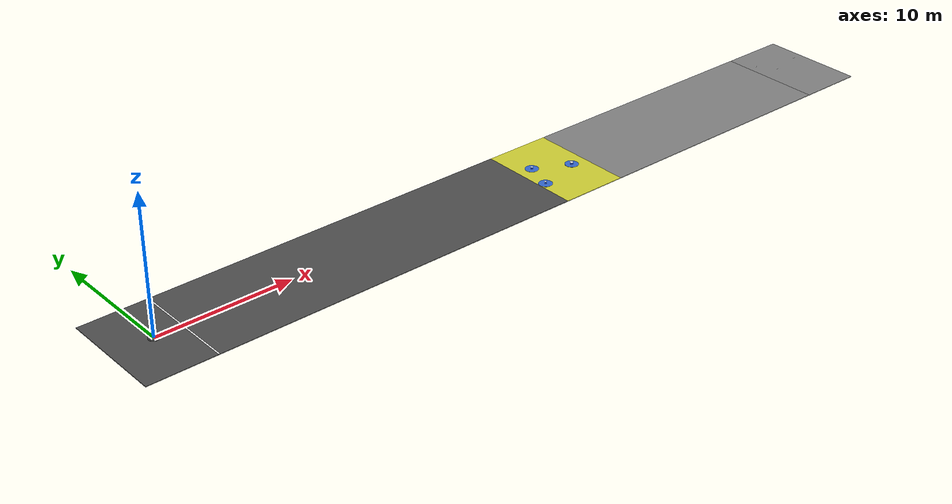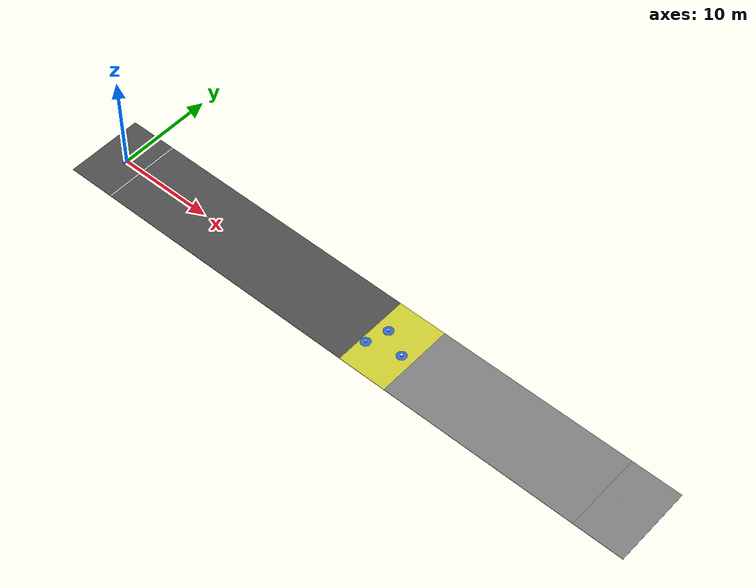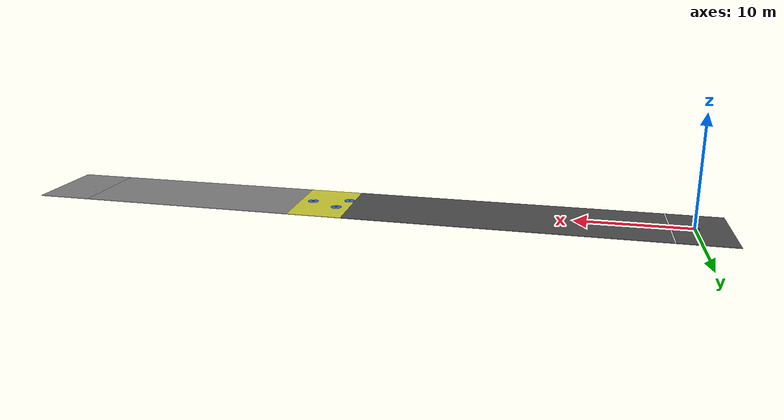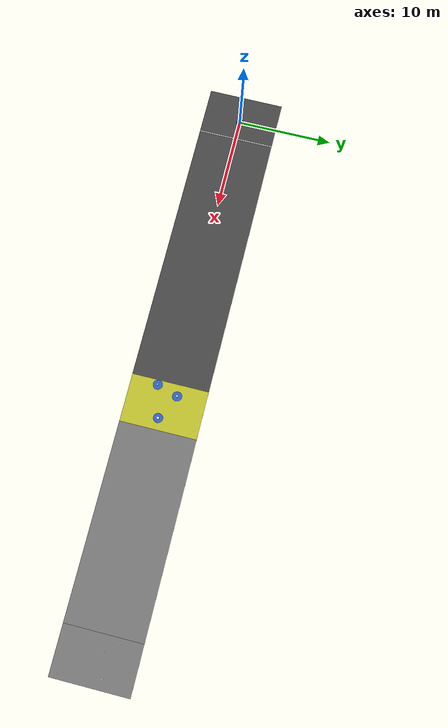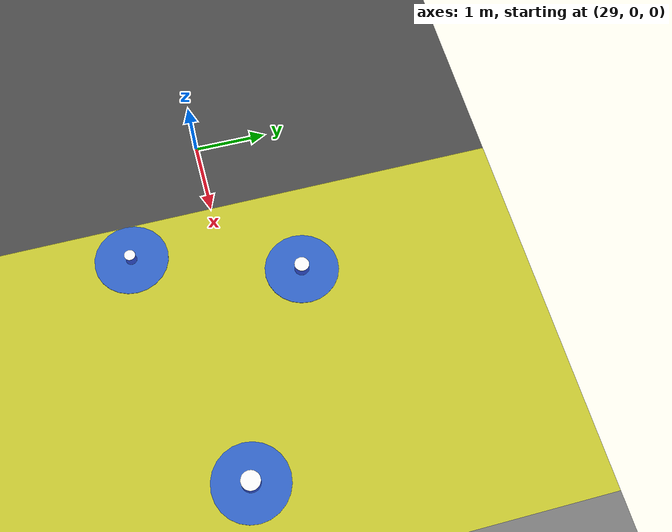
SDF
<sdf version="1.9">
 <world name="competition_task_random">
  <physics name="1ms" type="ignore">
   <max_step_size>0.001</max_step_size>
   <real_time_factor>1.0</real_time_factor>
  </physics>
  <plugin filename="gz-sim-physics-system" name="gz::sim::systems::Physics"/>
  <plugin filename="gz-sim-sensors-system" name="gz::sim::systems::Sensors">
   <render_engine>ogre2</render_engine>
  </plugin>
  <plugin filename="gz-sim-user-commands-system" name="gz::sim::systems::UserCommands"/>
  <plugin filename="gz-sim-scene-broadcaster-system" name="gz::sim::systems::SceneBroadcaster"/>
  <plugin filename="gz-sim-imu-system" name="gz::sim::systems::Imu"/>
  <plugin filename="gz-sim-navsat-system" name="gz::sim::systems::NavSat"/>
  <scene><ambient>1.0 1.0 1.0</ambient><background>0.8 0.8 0.8</background></scene>
  <spherical_coordinates>
   <latitude_deg>-35.363262</latitude_deg>
   <longitude_deg>149.165237</longitude_deg>
   <elevation>584</elevation>
   <heading_deg>0</heading_deg>
   <surface_model>EARTH_WGS84</surface_model>
  </spherical_coordinates>
  <light type="directional" name="sun">
   <pose>0 0 10 0 0 0</pose>
   <diffuse>0.8 0.8 0.8 1</diffuse>
   <specular>0.8 0.8 0.8 1</specular>
   <attenuation>
    <range>1000</range>
    <constant>0.9</constant>
    <linear>0.01</linear>
    <quadratic>0.001</quadratic>
   </attenuation>
   <direction>-0.5 0.1 -0.9</direction>
  </light>
  <model name="axes">
   <static>1</static>
   <link name="link">
    <visual name="r">
     <cast_shadows>0</cast_shadows>
     <pose>5 0 0.1 0 0 0</pose>
     <geometry><box><size>10 0.01 0.01</size></box></geometry>
     <material>
      <ambient>1 0 0 0.8</ambient>
      <diffuse>1 0 0 0.8</diffuse>
      <emissive>1 0 0 0.8</emissive>
      <specular>0.5 0.5 0.5 0.8</specular>
     </material>
    </visual>
    <visual name="g">
     <cast_shadows>0</cast_shadows>
     <pose>0 5 0.1 0 0 0</pose>
     <geometry><box><size>0.01 10 0.01</size></box></geometry>
     <material>
      <ambient>0 1 0 0.8</ambient>
      <diffuse>0 1 0 0.8</diffuse>
      <emissive>0 1 0 0.8</emissive>
      <specular>0.5 0.5 0.5 0.8</specular>
     </material>
    </visual>
    <visual name="b">
     <cast_shadows>0</cast_shadows>
     <pose>0 0 5.1 0 0 0</pose>
     <geometry><box><size>0.01 0.01 10</size></box></geometry>
     <material>
      <ambient>0 0 1 0.8</ambient>
      <diffuse>0 0 1 0.8</diffuse>
      <emissive>0 0 1 0.8</emissive>
      <specular>0.5 0.5 0.5 0.8</specular>
     </material>
    </visual>
    <sensor name="navsat_sensor" type="navsat"><always_on>1</always_on><update_rate>1</update_rate></sensor>
   </link>
  </model>
  <model name="takeoff_area_ground">
   <static>true</static>
   <link name="link">
    <visual name="ground">
     <geometry><box><size>33 8 0.05</size></box></geometry>
     <pose>13.5 0 -0.025 0 0 0</pose>
     <material><ambient>0.3 0.3 0.3 1</ambient><diffuse>0.3 0.3 0.3 1</diffuse></material>
    </visual>
   </link>
  </model>
  <model name="takeoff_pad">
   <static>true</static>
   <pose>0 0 0 0 0 1.5708</pose>
   <link name="link">
    <visual name="pad">
     <geometry><cylinder><radius>0.4</radius><length>0.02</length></cylinder></geometry>
     <pose>0 0 0.01 0 0 0</pose>
     <material><ambient>0.2 0.2 0.2 1</ambient><diffuse>0.2 0.2 0.2 1</diffuse></material>
    </visual>
    <visual name="h_left_vertical">
     <geometry><box><size>0.05 0.3 0.02</size></box></geometry>
     <pose>-0.15 0 0.02 0 0 0</pose>
     <material><ambient>1 1 1 1</ambient><diffuse>1 1 1 1</diffuse></material>
    </visual>
    <visual name="h_right_vertical">
     <geometry><box><size>0.05 0.3 0.02</size></box></geometry>
     <pose>0.15 0 0.02 0 0 0</pose>
     <material><ambient>1 1 1 1</ambient><diffuse>1 1 1 1</diffuse></material>
    </visual>
    <visual name="h_middle_horizontal">
     <geometry><box><size>0.3 0.05 0.02</size></box></geometry>
     <pose>0 0 0.02 0 0 0</pose>
     <material><ambient>1 1 1 1</ambient><diffuse>1 1 1 1</diffuse></material>
    </visual>
   </link>
  </model>
  <model name="takeoff_line">
   <static>true</static>
   <link name="link">
    <visual name="line">
     <geometry><box><size>0.1 8 0.01</size></box></geometry>
     <pose>2 0 0.02 0 0 0</pose>
     <material><ambient>1 1 1 1</ambient><diffuse>1 1 1 1</diffuse></material>
    </visual>
   </link>
  </model>
  <model name="drop_zone_ground">
   <static>true</static>
   <link name="link">
    <visual name="ground">
     <geometry><box><size>5 8 0.05</size></box></geometry>
     <pose>32.5 0 -0.025 0 0 0</pose>
     <material><ambient>0.8 0.8 0.2 1</ambient><diffuse>0.8 0.8 0.2 1</diffuse></material>
    </visual>
   </link>
  </model>
  <model name="white_bucket_bottom_1">
   <static>true</static>
   <link name="link">
    <visual name="disk">
     <geometry><cylinder><radius>0.075</radius><length>0.01</length></cylinder></geometry>
     <pose>30.5 -1.2 0.151 0 0 0</pose>
     <material><ambient>1 1 1 1</ambient><diffuse>1 1 1 1</diffuse></material>
    </visual>
   </link>
  </model>
  <model name="white_bucket_bottom_2">
   <static>true</static>
   <link name="link">
    <visual name="disk">
     <geometry><cylinder><radius>0.1</radius><length>0.01</length></cylinder></geometry>
     <pose>31.2 1.0 0.151 0 0 0</pose>
     <material><ambient>1 1 1 1</ambient><diffuse>1 1 1 1</diffuse></material>
    </visual>
   </link>
  </model>
  <model name="white_bucket_bottom_3">
   <static>true</static>
   <link name="link">
    <visual name="disk">
     <geometry><cylinder><radius>0.125</radius><length>0.01</length></cylinder></geometry>
     <pose>33.8 -0.3 0.151 0 0 0</pose>
     <material><ambient>1 1 1 1</ambient><diffuse>1 1 1 1</diffuse></material>
    </visual>
   </link>
  </model>
  <model name="drop_zone_blue_b_1">
   <static>true</static>
   <link name="link">
    <visual name="disk">
     <geometry><cylinder><radius>0.5</radius><length>0.01</length></cylinder></geometry>
     <pose>30.5 -1.2 0.005 0 0 0</pose>
     <material><ambient>0.2 0.4 0.8 1</ambient><diffuse>0.2 0.4 0.8 1</diffuse></material>
    </visual>
   </link>
  </model>
  <model name="drop_zone_blue_a_1">
   <static>true</static>
   <link name="link">
    <visual name="disk">
     <geometry><cylinder><radius>0.075</radius><length>0.01</length></cylinder></geometry>
     <pose>30.5 -1.2 0.006 0 0 0</pose>
     <material><ambient>0.1 0.2 0.6 1</ambient><diffuse>0.1 0.2 0.6 1</diffuse></material>
    </visual>
   </link>
  </model>
  <model name="drop_zone_blue_b_2">
   <static>true</static>
   <link name="link">
    <visual name="disk">
     <geometry><cylinder><radius>0.5</radius><length>0.01</length></cylinder></geometry>
     <pose>31.2 1.0 0.005 0 0 0</pose>
     <material><ambient>0.2 0.4 0.8 1</ambient><diffuse>0.2 0.4 0.8 1</diffuse></material>
    </visual>
   </link>
  </model>
  <model name="drop_zone_blue_a_2">
   <static>true</static>
   <link name="link">
    <visual name="disk">
     <geometry><cylinder><radius>0.1</radius><length>0.01</length></cylinder></geometry>
     <pose>31.2 1.0 0.006 0 0 0</pose>
     <material><ambient>0.1 0.2 0.6 1</ambient><diffuse>0.1 0.2 0.6 1</diffuse></material>
    </visual>
   </link>
  </model>
  <model name="drop_zone_blue_b_3">
   <static>true</static>
   <link name="link">
    <visual name="disk">
     <geometry><cylinder><radius>0.5</radius><length>0.01</length></cylinder></geometry>
     <pose>33.8 -0.3 0.005 0 0 0</pose>
     <material><ambient>0.2 0.4 0.8 1</ambient><diffuse>0.2 0.4 0.8 1</diffuse></material>
    </visual>
   </link>
  </model>
  <model name="drop_zone_blue_a_3">
   <static>true</static>
   <link name="link">
    <visual name="disk">
     <geometry><cylinder><radius>0.125</radius><length>0.01</length></cylinder></geometry>
     <pose>33.8 -0.3 0.006 0 0 0</pose>
     <material><ambient>0.1 0.2 0.6 1</ambient><diffuse>0.1 0.2 0.6 1</diffuse></material>
    </visual>
   </link>
  </model>
  <model name="transition_zone_ground">
   <static>true</static>
   <link name="link">
    <visual name="ground">
     <geometry><box><size>20 8 0.05</size></box></geometry>
     <pose>45 0 -0.025 0 0 0</pose>
     <material><ambient>0.5 0.5 0.5 1</ambient><diffuse>0.5 0.5 0.5 1</diffuse></material>
    </visual>
   </link>
  </model>
  <model name="recon_area_ground">
   <static>true</static>
   <link name="link">
    <visual name="ground">
     <geometry><box><size>5 8 0.05</size></box></geometry>
     <pose>57.5 0 -0.025 0 0 0</pose>
     <material><ambient>0.5 0.5 0.5 1</ambient><diffuse>0.5 0.5 0.5 1</diffuse></material>
    </visual>
   </link>
  </model>
  <include><uri>model://danger_1爆炸品</uri><pose>55.5 1.8 0.152 0 0 0</pose></include>
  <include><uri>model://danger_3刺激性</uri><pose>56.5 0.5 0.152 0 0 0</pose></include>
  <include><uri>model://danger_6生物危害</uri><pose>59.0 1.0 0.152 0 0 0</pose></include>
 </world>
</sdf>

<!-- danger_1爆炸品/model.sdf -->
<sdf version="1.9">
  <model name="danger_1爆炸品">
    <static>true</static>
    <link name="link">
      <visual name="visual">
        <geometry>
          <box>
            <size>0.12 0.12 0.002</size>
          </box>
        </geometry>
        <material>
          <ambient>1 1 1 1</ambient>
          <diffuse>1 1 1 1</diffuse>
          <uri>model://danger_1爆炸品/icon.jpg</uri>
        </material>
      </visual>
    </link>
  </model>
</sdf>

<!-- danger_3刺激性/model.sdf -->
<sdf version="1.9">
  <model name="danger_3刺激性">
    <static>true</static>
    <link name="link">
      <visual name="visual">
        <geometry>
          <box>
            <size>0.12 0.12 0.002</size>
          </box>
        </geometry>
        <material>
          <ambient>1 1 1 1</ambient>
          <diffuse>1 1 1 1</diffuse>
          <uri>model://danger_3刺激性/icon.jpg</uri>
        </material>
      </visual>
    </link>
  </model>
</sdf>

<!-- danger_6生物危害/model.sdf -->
<sdf version="1.9">
  <model name="danger_6生物危害">
    <static>true</static>
    <link name="link">
      <visual name="visual">
        <geometry>
          <box>
            <size>0.12 0.12 0.002</size>
          </box>
        </geometry>
        <material>
          <ambient>1 1 1 1</ambient>
          <diffuse>1 1 1 1</diffuse>
          <uri>model://danger_6生物危害/icon.jpg</uri>
        </material>
      </visual>
    </link>
  </model>
</sdf>
